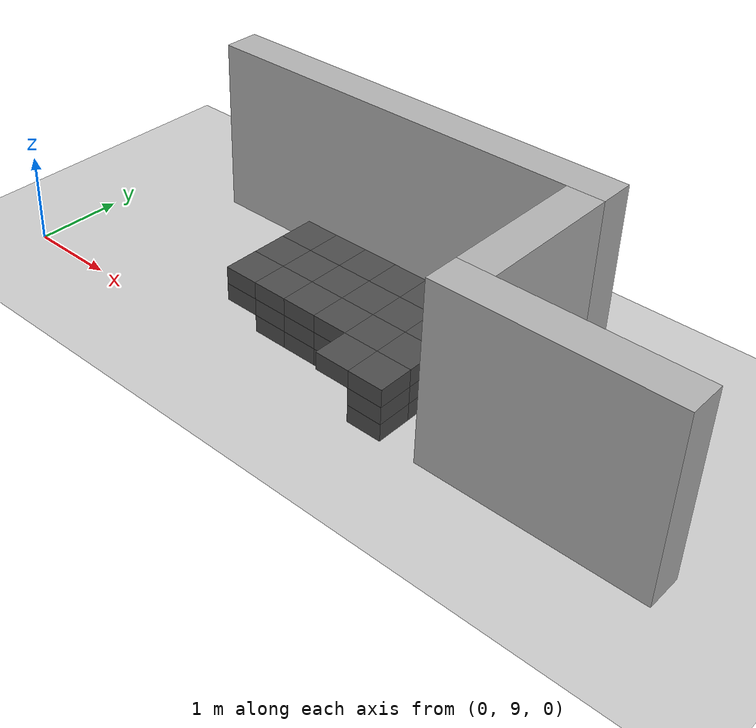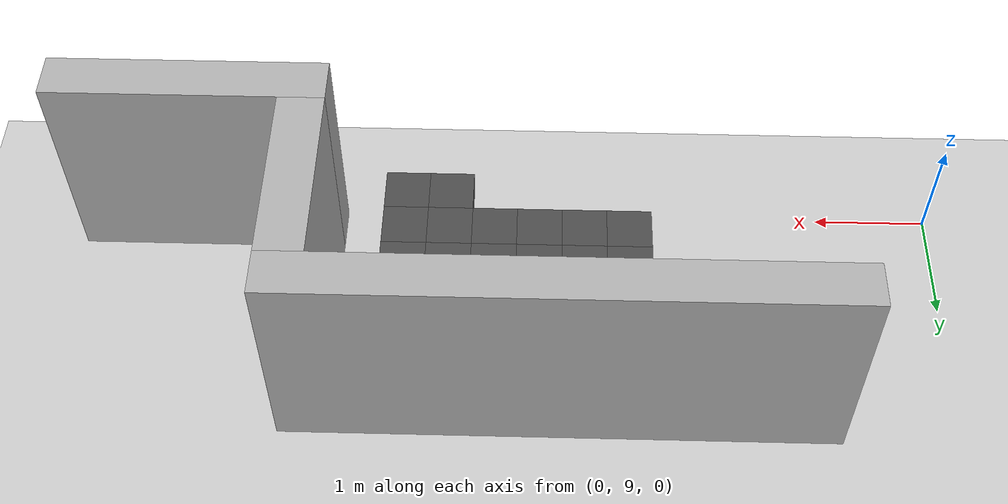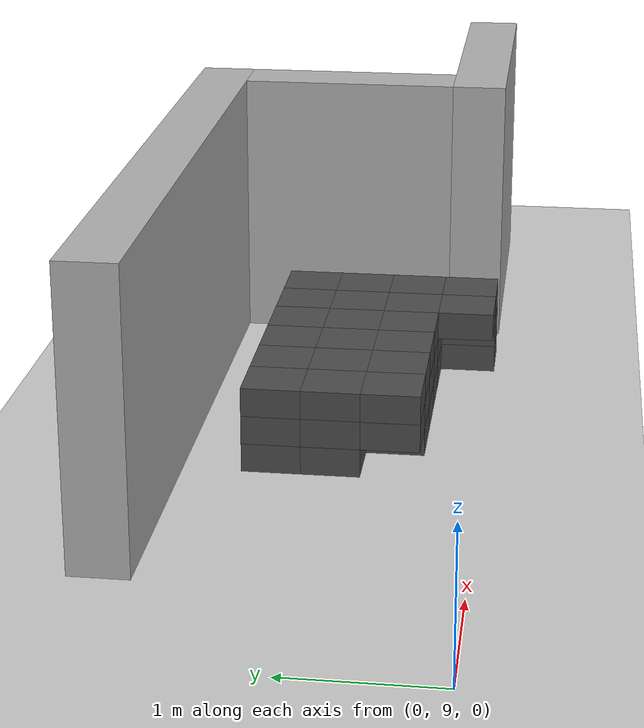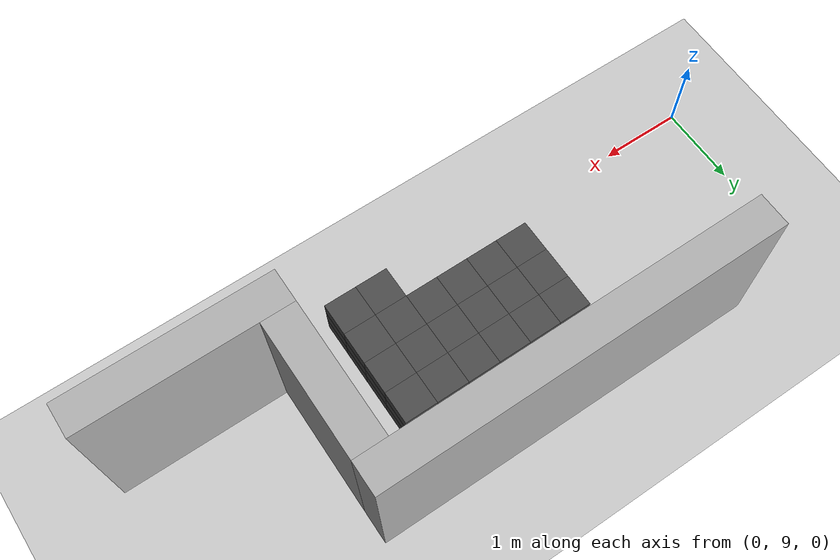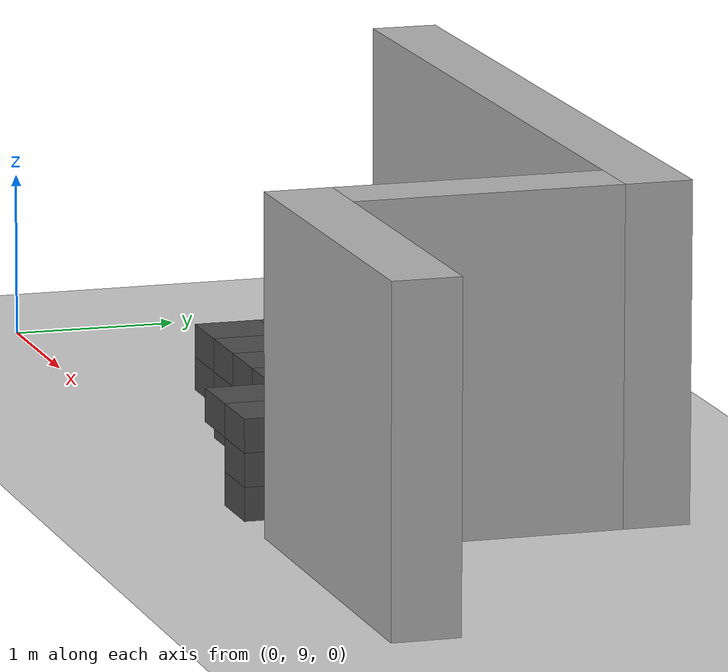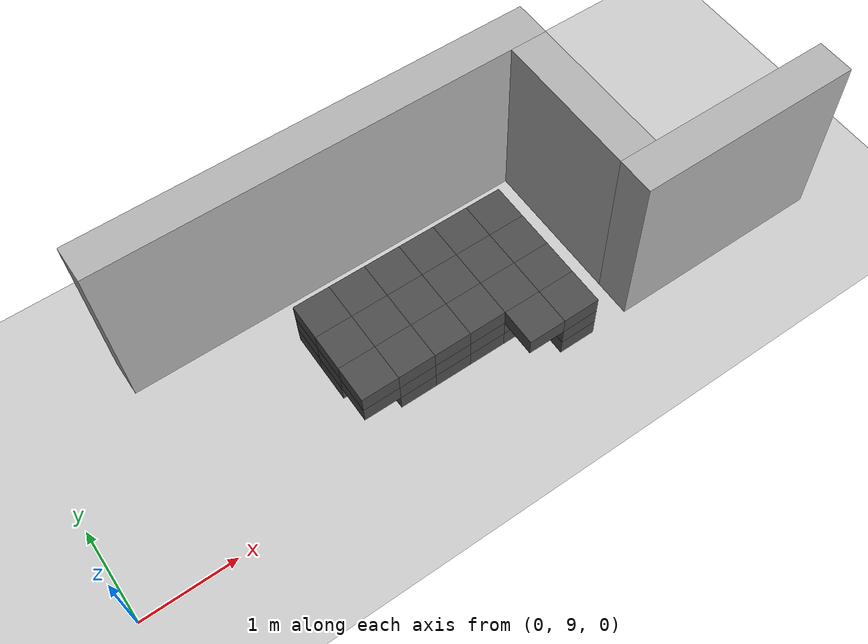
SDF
<sdf version="1.6">
 <world name="default">
  <include><uri>model://ground_plane</uri></include>
  <model name="wall_3">
   <pose frame="sim_world">5.6 10.2 1.0 0 0 0</pose>
   <static>True</static>
   <link name="wall_3_link">
    <inertial>
     <mass>100</mass>
     <inertia>
      <ixx>0.166667</ixx>
      <ixy>0</ixy>
      <ixz>0</ixz>
      <iyy>0.166667</iyy>
      <iyz>0</iyz>
      <izz>0.166667</izz>
     </inertia>
    </inertial>
    <collision name="wall_3_collision">
     <geometry><box><size>0.4 1.6 2.0</size></box></geometry>
     <max_contacts>100</max_contacts>
    </collision>
    <visual name="wall_3_visual">
     <geometry><box><size>0.4 1.6 2.0</size></box></geometry>
     <material><ambient>0.7 0.7 0.7 1</ambient><diffuse>0.7 0.7 0.7 1</diffuse></material>
    </visual>
   </link>
  </model>
  <model name="wall_24">
   <pose frame="sim_world">6.6 9.2 1.0 0 0 0</pose>
   <static>True</static>
   <link name="wall_24_link">
    <inertial>
     <mass>100</mass>
     <inertia>
      <ixx>0.166667</ixx>
      <ixy>0</ixy>
      <ixz>0</ixz>
      <iyy>0.166667</iyy>
      <iyz>0</iyz>
      <izz>0.166667</izz>
     </inertia>
    </inertial>
    <collision name="wall_24_collision">
     <geometry><box><size>2.4000000000000004 0.4 2.0</size></box></geometry>
     <max_contacts>100</max_contacts>
    </collision>
    <visual name="wall_24_visual">
     <geometry><box><size>2.4000000000000004 0.4 2.0</size></box></geometry>
     <material><ambient>0.7 0.7 0.7 1</ambient><diffuse>0.7 0.7 0.7 1</diffuse></material>
    </visual>
   </link>
  </model>
  <model name="wall_25">
   <pose frame="sim_world">3.4 11.2 1.0 0 0 0</pose>
   <static>True</static>
   <link name="wall_25_link">
    <inertial>
     <mass>100</mass>
     <inertia>
      <ixx>0.166667</ixx>
      <ixy>0</ixy>
      <ixz>0</ixz>
      <iyy>0.166667</iyy>
      <iyz>0</iyz>
      <izz>0.166667</izz>
     </inertia>
    </inertial>
    <collision name="wall_25_collision">
     <geometry><box><size>4.800000000000001 0.4 2.0</size></box></geometry>
     <max_contacts>100</max_contacts>
    </collision>
    <visual name="wall_25_visual">
     <geometry><box><size>4.800000000000001 0.4 2.0</size></box></geometry>
     <material><ambient>0.7 0.7 0.7 1</ambient><diffuse>0.7 0.7 0.7 1</diffuse></material>
    </visual>
   </link>
  </model>
  <model name="box_115">
   <pose frame="sim_world">2.8 9.6 0.3 0 -0 0</pose>
   <static>True</static>
   <link name="box_115_link">
    <inertial>
     <mass>100</mass>
     <inertia>
      <ixx>0.166667</ixx>
      <ixy>0</ixy>
      <ixz>0</ixz>
      <iyy>0.166667</iyy>
      <iyz>0</iyz>
      <izz>0.166667</izz>
     </inertia>
    </inertial>
    <collision name="box_115_collision">
     <geometry><box><size>0.4 0.4 0.2</size></box></geometry>
     <max_contacts>100</max_contacts>
    </collision>
    <visual name="box_115_visual">
     <geometry><box><size>0.4 0.4 0.2</size></box></geometry>
     <material><ambient>0.3 0.3 0.3 1</ambient><diffuse>0.3 0.3 0.3 1</diffuse></material>
    </visual>
   </link>
  </model>
  <model name="box_116">
   <pose frame="sim_world">2.8 9.6 0.5 0 -0 0</pose>
   <static>True</static>
   <link name="box_116_link">
    <inertial>
     <mass>100</mass>
     <inertia>
      <ixx>0.166667</ixx>
      <ixy>0</ixy>
      <ixz>0</ixz>
      <iyy>0.166667</iyy>
      <iyz>0</iyz>
      <izz>0.166667</izz>
     </inertia>
    </inertial>
    <collision name="box_116_collision">
     <geometry><box><size>0.4 0.4 0.2</size></box></geometry>
     <max_contacts>100</max_contacts>
    </collision>
    <visual name="box_116_visual">
     <geometry><box><size>0.4 0.4 0.2</size></box></geometry>
     <material><ambient>0.3 0.3 0.3 1</ambient><diffuse>0.3 0.3 0.3 1</diffuse></material>
    </visual>
   </link>
  </model>
  <model name="box_117">
   <pose frame="sim_world">2.8 10.0 0.1 0 -0 0</pose>
   <static>True</static>
   <link name="box_117_link">
    <inertial>
     <mass>100</mass>
     <inertia>
      <ixx>0.166667</ixx>
      <ixy>0</ixy>
      <ixz>0</ixz>
      <iyy>0.166667</iyy>
      <iyz>0</iyz>
      <izz>0.166667</izz>
     </inertia>
    </inertial>
    <collision name="box_117_collision">
     <geometry><box><size>0.4 0.4 0.2</size></box></geometry>
     <max_contacts>100</max_contacts>
    </collision>
    <visual name="box_117_visual">
     <geometry><box><size>0.4 0.4 0.2</size></box></geometry>
     <material><ambient>0.3 0.3 0.3 1</ambient><diffuse>0.3 0.3 0.3 1</diffuse></material>
    </visual>
   </link>
  </model>
  <model name="box_118">
   <pose frame="sim_world">2.8 10.0 0.3 0 -0 0</pose>
   <static>True</static>
   <link name="box_118_link">
    <inertial>
     <mass>100</mass>
     <inertia>
      <ixx>0.166667</ixx>
      <ixy>0</ixy>
      <ixz>0</ixz>
      <iyy>0.166667</iyy>
      <iyz>0</iyz>
      <izz>0.166667</izz>
     </inertia>
    </inertial>
    <collision name="box_118_collision">
     <geometry><box><size>0.4 0.4 0.2</size></box></geometry>
     <max_contacts>100</max_contacts>
    </collision>
    <visual name="box_118_visual">
     <geometry><box><size>0.4 0.4 0.2</size></box></geometry>
     <material><ambient>0.3 0.3 0.3 1</ambient><diffuse>0.3 0.3 0.3 1</diffuse></material>
    </visual>
   </link>
  </model>
  <model name="box_119">
   <pose frame="sim_world">2.8 10.0 0.5 0 -0 0</pose>
   <static>True</static>
   <link name="box_119_link">
    <inertial>
     <mass>100</mass>
     <inertia>
      <ixx>0.166667</ixx>
      <ixy>0</ixy>
      <ixz>0</ixz>
      <iyy>0.166667</iyy>
      <iyz>0</iyz>
      <izz>0.166667</izz>
     </inertia>
    </inertial>
    <collision name="box_119_collision">
     <geometry><box><size>0.4 0.4 0.2</size></box></geometry>
     <max_contacts>100</max_contacts>
    </collision>
    <visual name="box_119_visual">
     <geometry><box><size>0.4 0.4 0.2</size></box></geometry>
     <material><ambient>0.3 0.3 0.3 1</ambient><diffuse>0.3 0.3 0.3 1</diffuse></material>
    </visual>
   </link>
  </model>
  <model name="box_120">
   <pose frame="sim_world">2.8 10.4 0.1 0 -0 0</pose>
   <static>True</static>
   <link name="box_120_link">
    <inertial>
     <mass>100</mass>
     <inertia>
      <ixx>0.166667</ixx>
      <ixy>0</ixy>
      <ixz>0</ixz>
      <iyy>0.166667</iyy>
      <iyz>0</iyz>
      <izz>0.166667</izz>
     </inertia>
    </inertial>
    <collision name="box_120_collision">
     <geometry><box><size>0.4 0.4 0.2</size></box></geometry>
     <max_contacts>100</max_contacts>
    </collision>
    <visual name="box_120_visual">
     <geometry><box><size>0.4 0.4 0.2</size></box></geometry>
     <material><ambient>0.3 0.3 0.3 1</ambient><diffuse>0.3 0.3 0.3 1</diffuse></material>
    </visual>
   </link>
  </model>
  <model name="box_121">
   <pose frame="sim_world">2.8 10.4 0.3 0 -0 0</pose>
   <static>True</static>
   <link name="box_121_link">
    <inertial>
     <mass>100</mass>
     <inertia>
      <ixx>0.166667</ixx>
      <ixy>0</ixy>
      <ixz>0</ixz>
      <iyy>0.166667</iyy>
      <iyz>0</iyz>
      <izz>0.166667</izz>
     </inertia>
    </inertial>
    <collision name="box_121_collision">
     <geometry><box><size>0.4 0.4 0.2</size></box></geometry>
     <max_contacts>100</max_contacts>
    </collision>
    <visual name="box_121_visual">
     <geometry><box><size>0.4 0.4 0.2</size></box></geometry>
     <material><ambient>0.3 0.3 0.3 1</ambient><diffuse>0.3 0.3 0.3 1</diffuse></material>
    </visual>
   </link>
  </model>
  <model name="box_122">
   <pose frame="sim_world">2.8 10.4 0.5 0 -0 0</pose>
   <static>True</static>
   <link name="box_122_link">
    <inertial>
     <mass>100</mass>
     <inertia>
      <ixx>0.166667</ixx>
      <ixy>0</ixy>
      <ixz>0</ixz>
      <iyy>0.166667</iyy>
      <iyz>0</iyz>
      <izz>0.166667</izz>
     </inertia>
    </inertial>
    <collision name="box_122_collision">
     <geometry><box><size>0.4 0.4 0.2</size></box></geometry>
     <max_contacts>100</max_contacts>
    </collision>
    <visual name="box_122_visual">
     <geometry><box><size>0.4 0.4 0.2</size></box></geometry>
     <material><ambient>0.3 0.3 0.3 1</ambient><diffuse>0.3 0.3 0.3 1</diffuse></material>
    </visual>
   </link>
  </model>
  <model name="box_129">
   <pose frame="sim_world">3.2 9.6 0.1 0 -0 0</pose>
   <static>True</static>
   <link name="box_129_link">
    <inertial>
     <mass>100</mass>
     <inertia>
      <ixx>0.166667</ixx>
      <ixy>0</ixy>
      <ixz>0</ixz>
      <iyy>0.166667</iyy>
      <iyz>0</iyz>
      <izz>0.166667</izz>
     </inertia>
    </inertial>
    <collision name="box_129_collision">
     <geometry><box><size>0.4 0.4 0.2</size></box></geometry>
     <max_contacts>100</max_contacts>
    </collision>
    <visual name="box_129_visual">
     <geometry><box><size>0.4 0.4 0.2</size></box></geometry>
     <material><ambient>0.3 0.3 0.3 1</ambient><diffuse>0.3 0.3 0.3 1</diffuse></material>
    </visual>
   </link>
  </model>
  <model name="box_130">
   <pose frame="sim_world">3.2 9.6 0.3 0 -0 0</pose>
   <static>True</static>
   <link name="box_130_link">
    <inertial>
     <mass>100</mass>
     <inertia>
      <ixx>0.166667</ixx>
      <ixy>0</ixy>
      <ixz>0</ixz>
      <iyy>0.166667</iyy>
      <iyz>0</iyz>
      <izz>0.166667</izz>
     </inertia>
    </inertial>
    <collision name="box_130_collision">
     <geometry><box><size>0.4 0.4 0.2</size></box></geometry>
     <max_contacts>100</max_contacts>
    </collision>
    <visual name="box_130_visual">
     <geometry><box><size>0.4 0.4 0.2</size></box></geometry>
     <material><ambient>0.3 0.3 0.3 1</ambient><diffuse>0.3 0.3 0.3 1</diffuse></material>
    </visual>
   </link>
  </model>
  <model name="box_131">
   <pose frame="sim_world">3.2 9.6 0.5 0 -0 0</pose>
   <static>True</static>
   <link name="box_131_link">
    <inertial>
     <mass>100</mass>
     <inertia>
      <ixx>0.166667</ixx>
      <ixy>0</ixy>
      <ixz>0</ixz>
      <iyy>0.166667</iyy>
      <iyz>0</iyz>
      <izz>0.166667</izz>
     </inertia>
    </inertial>
    <collision name="box_131_collision">
     <geometry><box><size>0.4 0.4 0.2</size></box></geometry>
     <max_contacts>100</max_contacts>
    </collision>
    <visual name="box_131_visual">
     <geometry><box><size>0.4 0.4 0.2</size></box></geometry>
     <material><ambient>0.3 0.3 0.3 1</ambient><diffuse>0.3 0.3 0.3 1</diffuse></material>
    </visual>
   </link>
  </model>
  <model name="box_132">
   <pose frame="sim_world">3.2 10.0 0.1 0 -0 0</pose>
   <static>True</static>
   <link name="box_132_link">
    <inertial>
     <mass>100</mass>
     <inertia>
      <ixx>0.166667</ixx>
      <ixy>0</ixy>
      <ixz>0</ixz>
      <iyy>0.166667</iyy>
      <iyz>0</iyz>
      <izz>0.166667</izz>
     </inertia>
    </inertial>
    <collision name="box_132_collision">
     <geometry><box><size>0.4 0.4 0.2</size></box></geometry>
     <max_contacts>100</max_contacts>
    </collision>
    <visual name="box_132_visual">
     <geometry><box><size>0.4 0.4 0.2</size></box></geometry>
     <material><ambient>0.3 0.3 0.3 1</ambient><diffuse>0.3 0.3 0.3 1</diffuse></material>
    </visual>
   </link>
  </model>
  <model name="box_133">
   <pose frame="sim_world">3.2 10.0 0.3 0 -0 0</pose>
   <static>True</static>
   <link name="box_133_link">
    <inertial>
     <mass>100</mass>
     <inertia>
      <ixx>0.166667</ixx>
      <ixy>0</ixy>
      <ixz>0</ixz>
      <iyy>0.166667</iyy>
      <iyz>0</iyz>
      <izz>0.166667</izz>
     </inertia>
    </inertial>
    <collision name="box_133_collision">
     <geometry><box><size>0.4 0.4 0.2</size></box></geometry>
     <max_contacts>100</max_contacts>
    </collision>
    <visual name="box_133_visual">
     <geometry><box><size>0.4 0.4 0.2</size></box></geometry>
     <material><ambient>0.3 0.3 0.3 1</ambient><diffuse>0.3 0.3 0.3 1</diffuse></material>
    </visual>
   </link>
  </model>
  <model name="box_134">
   <pose frame="sim_world">3.2 10.0 0.5 0 -0 0</pose>
   <static>True</static>
   <link name="box_134_link">
    <inertial>
     <mass>100</mass>
     <inertia>
      <ixx>0.166667</ixx>
      <ixy>0</ixy>
      <ixz>0</ixz>
      <iyy>0.166667</iyy>
      <iyz>0</iyz>
      <izz>0.166667</izz>
     </inertia>
    </inertial>
    <collision name="box_134_collision">
     <geometry><box><size>0.4 0.4 0.2</size></box></geometry>
     <max_contacts>100</max_contacts>
    </collision>
    <visual name="box_134_visual">
     <geometry><box><size>0.4 0.4 0.2</size></box></geometry>
     <material><ambient>0.3 0.3 0.3 1</ambient><diffuse>0.3 0.3 0.3 1</diffuse></material>
    </visual>
   </link>
  </model>
  <model name="box_135">
   <pose frame="sim_world">3.2 10.4 0.1 0 -0 0</pose>
   <static>True</static>
   <link name="box_135_link">
    <inertial>
     <mass>100</mass>
     <inertia>
      <ixx>0.166667</ixx>
      <ixy>0</ixy>
      <ixz>0</ixz>
      <iyy>0.166667</iyy>
      <iyz>0</iyz>
      <izz>0.166667</izz>
     </inertia>
    </inertial>
    <collision name="box_135_collision">
     <geometry><box><size>0.4 0.4 0.2</size></box></geometry>
     <max_contacts>100</max_contacts>
    </collision>
    <visual name="box_135_visual">
     <geometry><box><size>0.4 0.4 0.2</size></box></geometry>
     <material><ambient>0.3 0.3 0.3 1</ambient><diffuse>0.3 0.3 0.3 1</diffuse></material>
    </visual>
   </link>
  </model>
  <model name="box_136">
   <pose frame="sim_world">3.2 10.4 0.3 0 -0 0</pose>
   <static>True</static>
   <link name="box_136_link">
    <inertial>
     <mass>100</mass>
     <inertia>
      <ixx>0.166667</ixx>
      <ixy>0</ixy>
      <ixz>0</ixz>
      <iyy>0.166667</iyy>
      <iyz>0</iyz>
      <izz>0.166667</izz>
     </inertia>
    </inertial>
    <collision name="box_136_collision">
     <geometry><box><size>0.4 0.4 0.2</size></box></geometry>
     <max_contacts>100</max_contacts>
    </collision>
    <visual name="box_136_visual">
     <geometry><box><size>0.4 0.4 0.2</size></box></geometry>
     <material><ambient>0.3 0.3 0.3 1</ambient><diffuse>0.3 0.3 0.3 1</diffuse></material>
    </visual>
   </link>
  </model>
  <model name="box_137">
   <pose frame="sim_world">3.2 10.4 0.5 0 -0 0</pose>
   <static>True</static>
   <link name="box_137_link">
    <inertial>
     <mass>100</mass>
     <inertia>
      <ixx>0.166667</ixx>
      <ixy>0</ixy>
      <ixz>0</ixz>
      <iyy>0.166667</iyy>
      <iyz>0</iyz>
      <izz>0.166667</izz>
     </inertia>
    </inertial>
    <collision name="box_137_collision">
     <geometry><box><size>0.4 0.4 0.2</size></box></geometry>
     <max_contacts>100</max_contacts>
    </collision>
    <visual name="box_137_visual">
     <geometry><box><size>0.4 0.4 0.2</size></box></geometry>
     <material><ambient>0.3 0.3 0.3 1</ambient><diffuse>0.3 0.3 0.3 1</diffuse></material>
    </visual>
   </link>
  </model>
  <model name="box_141">
   <pose frame="sim_world">3.6 9.6 0.1 0 -0 0</pose>
   <static>True</static>
   <link name="box_141_link">
    <inertial>
     <mass>100</mass>
     <inertia>
      <ixx>0.166667</ixx>
      <ixy>0</ixy>
      <ixz>0</ixz>
      <iyy>0.166667</iyy>
      <iyz>0</iyz>
      <izz>0.166667</izz>
     </inertia>
    </inertial>
    <collision name="box_141_collision">
     <geometry><box><size>0.4 0.4 0.2</size></box></geometry>
     <max_contacts>100</max_contacts>
    </collision>
    <visual name="box_141_visual">
     <geometry><box><size>0.4 0.4 0.2</size></box></geometry>
     <material><ambient>0.3 0.3 0.3 1</ambient><diffuse>0.3 0.3 0.3 1</diffuse></material>
    </visual>
   </link>
  </model>
  <model name="box_142">
   <pose frame="sim_world">3.6 9.6 0.3 0 -0 0</pose>
   <static>True</static>
   <link name="box_142_link">
    <inertial>
     <mass>100</mass>
     <inertia>
      <ixx>0.166667</ixx>
      <ixy>0</ixy>
      <ixz>0</ixz>
      <iyy>0.166667</iyy>
      <iyz>0</iyz>
      <izz>0.166667</izz>
     </inertia>
    </inertial>
    <collision name="box_142_collision">
     <geometry><box><size>0.4 0.4 0.2</size></box></geometry>
     <max_contacts>100</max_contacts>
    </collision>
    <visual name="box_142_visual">
     <geometry><box><size>0.4 0.4 0.2</size></box></geometry>
     <material><ambient>0.3 0.3 0.3 1</ambient><diffuse>0.3 0.3 0.3 1</diffuse></material>
    </visual>
   </link>
  </model>
  <model name="box_143">
   <pose frame="sim_world">3.6 9.6 0.5 0 -0 0</pose>
   <static>True</static>
   <link name="box_143_link">
    <inertial>
     <mass>100</mass>
     <inertia>
      <ixx>0.166667</ixx>
      <ixy>0</ixy>
      <ixz>0</ixz>
      <iyy>0.166667</iyy>
      <iyz>0</iyz>
      <izz>0.166667</izz>
     </inertia>
    </inertial>
    <collision name="box_143_collision">
     <geometry><box><size>0.4 0.4 0.2</size></box></geometry>
     <max_contacts>100</max_contacts>
    </collision>
    <visual name="box_143_visual">
     <geometry><box><size>0.4 0.4 0.2</size></box></geometry>
     <material><ambient>0.3 0.3 0.3 1</ambient><diffuse>0.3 0.3 0.3 1</diffuse></material>
    </visual>
   </link>
  </model>
  <model name="box_144">
   <pose frame="sim_world">3.6 10.0 0.1 0 -0 0</pose>
   <static>True</static>
   <link name="box_144_link">
    <inertial>
     <mass>100</mass>
     <inertia>
      <ixx>0.166667</ixx>
      <ixy>0</ixy>
      <ixz>0</ixz>
      <iyy>0.166667</iyy>
      <iyz>0</iyz>
      <izz>0.166667</izz>
     </inertia>
    </inertial>
    <collision name="box_144_collision">
     <geometry><box><size>0.4 0.4 0.2</size></box></geometry>
     <max_contacts>100</max_contacts>
    </collision>
    <visual name="box_144_visual">
     <geometry><box><size>0.4 0.4 0.2</size></box></geometry>
     <material><ambient>0.3 0.3 0.3 1</ambient><diffuse>0.3 0.3 0.3 1</diffuse></material>
    </visual>
   </link>
  </model>
  <model name="box_145">
   <pose frame="sim_world">3.6 10.0 0.3 0 -0 0</pose>
   <static>True</static>
   <link name="box_145_link">
    <inertial>
     <mass>100</mass>
     <inertia>
      <ixx>0.166667</ixx>
      <ixy>0</ixy>
      <ixz>0</ixz>
      <iyy>0.166667</iyy>
      <iyz>0</iyz>
      <izz>0.166667</izz>
     </inertia>
    </inertial>
    <collision name="box_145_collision">
     <geometry><box><size>0.4 0.4 0.2</size></box></geometry>
     <max_contacts>100</max_contacts>
    </collision>
    <visual name="box_145_visual">
     <geometry><box><size>0.4 0.4 0.2</size></box></geometry>
     <material><ambient>0.3 0.3 0.3 1</ambient><diffuse>0.3 0.3 0.3 1</diffuse></material>
    </visual>
   </link>
  </model>
  <model name="box_146">
   <pose frame="sim_world">3.6 10.0 0.5 0 -0 0</pose>
   <static>True</static>
   <link name="box_146_link">
    <inertial>
     <mass>100</mass>
     <inertia>
      <ixx>0.166667</ixx>
      <ixy>0</ixy>
      <ixz>0</ixz>
      <iyy>0.166667</iyy>
      <iyz>0</iyz>
      <izz>0.166667</izz>
     </inertia>
    </inertial>
    <collision name="box_146_collision">
     <geometry><box><size>0.4 0.4 0.2</size></box></geometry>
     <max_contacts>100</max_contacts>
    </collision>
    <visual name="box_146_visual">
     <geometry><box><size>0.4 0.4 0.2</size></box></geometry>
     <material><ambient>0.3 0.3 0.3 1</ambient><diffuse>0.3 0.3 0.3 1</diffuse></material>
    </visual>
   </link>
  </model>
  <model name="box_147">
   <pose frame="sim_world">3.6 10.4 0.1 0 -0 0</pose>
   <static>True</static>
   <link name="box_147_link">
    <inertial>
     <mass>100</mass>
     <inertia>
      <ixx>0.166667</ixx>
      <ixy>0</ixy>
      <ixz>0</ixz>
      <iyy>0.166667</iyy>
      <iyz>0</iyz>
      <izz>0.166667</izz>
     </inertia>
    </inertial>
    <collision name="box_147_collision">
     <geometry><box><size>0.4 0.4 0.2</size></box></geometry>
     <max_contacts>100</max_contacts>
    </collision>
    <visual name="box_147_visual">
     <geometry><box><size>0.4 0.4 0.2</size></box></geometry>
     <material><ambient>0.3 0.3 0.3 1</ambient><diffuse>0.3 0.3 0.3 1</diffuse></material>
    </visual>
   </link>
  </model>
  <model name="box_148">
   <pose frame="sim_world">3.6 10.4 0.3 0 -0 0</pose>
   <static>True</static>
   <link name="box_148_link">
    <inertial>
     <mass>100</mass>
     <inertia>
      <ixx>0.166667</ixx>
      <ixy>0</ixy>
      <ixz>0</ixz>
      <iyy>0.166667</iyy>
      <iyz>0</iyz>
      <izz>0.166667</izz>
     </inertia>
    </inertial>
    <collision name="box_148_collision">
     <geometry><box><size>0.4 0.4 0.2</size></box></geometry>
     <max_contacts>100</max_contacts>
    </collision>
    <visual name="box_148_visual">
     <geometry><box><size>0.4 0.4 0.2</size></box></geometry>
     <material><ambient>0.3 0.3 0.3 1</ambient><diffuse>0.3 0.3 0.3 1</diffuse></material>
    </visual>
   </link>
  </model>
  <model name="box_149">
   <pose frame="sim_world">3.6 10.4 0.5 0 -0 0</pose>
   <static>True</static>
   <link name="box_149_link">
    <inertial>
     <mass>100</mass>
     <inertia>
      <ixx>0.166667</ixx>
      <ixy>0</ixy>
      <ixz>0</ixz>
      <iyy>0.166667</iyy>
      <iyz>0</iyz>
      <izz>0.166667</izz>
     </inertia>
    </inertial>
    <collision name="box_149_collision">
     <geometry><box><size>0.4 0.4 0.2</size></box></geometry>
     <max_contacts>100</max_contacts>
    </collision>
    <visual name="box_149_visual">
     <geometry><box><size>0.4 0.4 0.2</size></box></geometry>
     <material><ambient>0.3 0.3 0.3 1</ambient><diffuse>0.3 0.3 0.3 1</diffuse></material>
    </visual>
   </link>
  </model>
  <model name="box_153">
   <pose frame="sim_world">4.0 9.6 0.1 0 -0 0</pose>
   <static>True</static>
   <link name="box_153_link">
    <inertial>
     <mass>100</mass>
     <inertia>
      <ixx>0.166667</ixx>
      <ixy>0</ixy>
      <ixz>0</ixz>
      <iyy>0.166667</iyy>
      <iyz>0</iyz>
      <izz>0.166667</izz>
     </inertia>
    </inertial>
    <collision name="box_153_collision">
     <geometry><box><size>0.4 0.4 0.2</size></box></geometry>
     <max_contacts>100</max_contacts>
    </collision>
    <visual name="box_153_visual">
     <geometry><box><size>0.4 0.4 0.2</size></box></geometry>
     <material><ambient>0.3 0.3 0.3 1</ambient><diffuse>0.3 0.3 0.3 1</diffuse></material>
    </visual>
   </link>
  </model>
  <model name="box_154">
   <pose frame="sim_world">4.0 9.6 0.3 0 -0 0</pose>
   <static>True</static>
   <link name="box_154_link">
    <inertial>
     <mass>100</mass>
     <inertia>
      <ixx>0.166667</ixx>
      <ixy>0</ixy>
      <ixz>0</ixz>
      <iyy>0.166667</iyy>
      <iyz>0</iyz>
      <izz>0.166667</izz>
     </inertia>
    </inertial>
    <collision name="box_154_collision">
     <geometry><box><size>0.4 0.4 0.2</size></box></geometry>
     <max_contacts>100</max_contacts>
    </collision>
    <visual name="box_154_visual">
     <geometry><box><size>0.4 0.4 0.2</size></box></geometry>
     <material><ambient>0.3 0.3 0.3 1</ambient><diffuse>0.3 0.3 0.3 1</diffuse></material>
    </visual>
   </link>
  </model>
  <model name="box_155">
   <pose frame="sim_world">4.0 9.6 0.5 0 -0 0</pose>
   <static>True</static>
   <link name="box_155_link">
    <inertial>
     <mass>100</mass>
     <inertia>
      <ixx>0.166667</ixx>
      <ixy>0</ixy>
      <ixz>0</ixz>
      <iyy>0.166667</iyy>
      <iyz>0</iyz>
      <izz>0.166667</izz>
     </inertia>
    </inertial>
    <collision name="box_155_collision">
     <geometry><box><size>0.4 0.4 0.2</size></box></geometry>
     <max_contacts>100</max_contacts>
    </collision>
    <visual name="box_155_visual">
     <geometry><box><size>0.4 0.4 0.2</size></box></geometry>
     <material><ambient>0.3 0.3 0.3 1</ambient><diffuse>0.3 0.3 0.3 1</diffuse></material>
    </visual>
   </link>
  </model>
  <model name="box_156">
   <pose frame="sim_world">4.0 10.0 0.1 0 -0 0</pose>
   <static>True</static>
   <link name="box_156_link">
    <inertial>
     <mass>100</mass>
     <inertia>
      <ixx>0.166667</ixx>
      <ixy>0</ixy>
      <ixz>0</ixz>
      <iyy>0.166667</iyy>
      <iyz>0</iyz>
      <izz>0.166667</izz>
     </inertia>
    </inertial>
    <collision name="box_156_collision">
     <geometry><box><size>0.4 0.4 0.2</size></box></geometry>
     <max_contacts>100</max_contacts>
    </collision>
    <visual name="box_156_visual">
     <geometry><box><size>0.4 0.4 0.2</size></box></geometry>
     <material><ambient>0.3 0.3 0.3 1</ambient><diffuse>0.3 0.3 0.3 1</diffuse></material>
    </visual>
   </link>
  </model>
  <model name="box_157">
   <pose frame="sim_world">4.0 10.0 0.3 0 -0 0</pose>
   <static>True</static>
   <link name="box_157_link">
    <inertial>
     <mass>100</mass>
     <inertia>
      <ixx>0.166667</ixx>
      <ixy>0</ixy>
      <ixz>0</ixz>
      <iyy>0.166667</iyy>
      <iyz>0</iyz>
      <izz>0.166667</izz>
     </inertia>
    </inertial>
    <collision name="box_157_collision">
     <geometry><box><size>0.4 0.4 0.2</size></box></geometry>
     <max_contacts>100</max_contacts>
    </collision>
    <visual name="box_157_visual">
     <geometry><box><size>0.4 0.4 0.2</size></box></geometry>
     <material><ambient>0.3 0.3 0.3 1</ambient><diffuse>0.3 0.3 0.3 1</diffuse></material>
    </visual>
   </link>
  </model>
  <model name="box_158">
   <pose frame="sim_world">4.0 10.0 0.5 0 -0 0</pose>
   <static>True</static>
   <link name="box_158_link">
    <inertial>
     <mass>100</mass>
     <inertia>
      <ixx>0.166667</ixx>
      <ixy>0</ixy>
      <ixz>0</ixz>
      <iyy>0.166667</iyy>
      <iyz>0</iyz>
      <izz>0.166667</izz>
     </inertia>
    </inertial>
    <collision name="box_158_collision">
     <geometry><box><size>0.4 0.4 0.2</size></box></geometry>
     <max_contacts>100</max_contacts>
    </collision>
    <visual name="box_158_visual">
     <geometry><box><size>0.4 0.4 0.2</size></box></geometry>
     <material><ambient>0.3 0.3 0.3 1</ambient><diffuse>0.3 0.3 0.3 1</diffuse></material>
    </visual>
   </link>
  </model>
  <model name="box_159">
   <pose frame="sim_world">4.0 10.4 0.1 0 -0 0</pose>
   <static>True</static>
   <link name="box_159_link">
    <inertial>
     <mass>100</mass>
     <inertia>
      <ixx>0.166667</ixx>
      <ixy>0</ixy>
      <ixz>0</ixz>
      <iyy>0.166667</iyy>
      <iyz>0</iyz>
      <izz>0.166667</izz>
     </inertia>
    </inertial>
    <collision name="box_159_collision">
     <geometry><box><size>0.4 0.4 0.2</size></box></geometry>
     <max_contacts>100</max_contacts>
    </collision>
    <visual name="box_159_visual">
     <geometry><box><size>0.4 0.4 0.2</size></box></geometry>
     <material><ambient>0.3 0.3 0.3 1</ambient><diffuse>0.3 0.3 0.3 1</diffuse></material>
    </visual>
   </link>
  </model>
  <model name="box_160">
   <pose frame="sim_world">4.0 10.4 0.3 0 -0 0</pose>
   <static>True</static>
   <link name="box_160_link">
    <inertial>
     <mass>100</mass>
     <inertia>
      <ixx>0.166667</ixx>
      <ixy>0</ixy>
      <ixz>0</ixz>
      <iyy>0.166667</iyy>
      <iyz>0</iyz>
      <izz>0.166667</izz>
     </inertia>
    </inertial>
    <collision name="box_160_collision">
     <geometry><box><size>0.4 0.4 0.2</size></box></geometry>
     <max_contacts>100</max_contacts>
    </collision>
    <visual name="box_160_visual">
     <geometry><box><size>0.4 0.4 0.2</size></box></geometry>
     <material><ambient>0.3 0.3 0.3 1</ambient><diffuse>0.3 0.3 0.3 1</diffuse></material>
    </visual>
   </link>
  </model>
  <model name="box_161">
   <pose frame="sim_world">4.0 10.4 0.5 0 -0 0</pose>
   <static>True</static>
   <link name="box_161_link">
    <inertial>
     <mass>100</mass>
     <inertia>
      <ixx>0.166667</ixx>
      <ixy>0</ixy>
      <ixz>0</ixz>
      <iyy>0.166667</iyy>
      <iyz>0</iyz>
      <izz>0.166667</izz>
     </inertia>
    </inertial>
    <collision name="box_161_collision">
     <geometry><box><size>0.4 0.4 0.2</size></box></geometry>
     <max_contacts>100</max_contacts>
    </collision>
    <visual name="box_161_visual">
     <geometry><box><size>0.4 0.4 0.2</size></box></geometry>
     <material><ambient>0.3 0.3 0.3 1</ambient><diffuse>0.3 0.3 0.3 1</diffuse></material>
    </visual>
   </link>
  </model>
  <model name="box_164">
   <pose frame="sim_world">4.4 9.2 0.5 0 -0 0</pose>
   <static>True</static>
   <link name="box_164_link">
    <inertial>
     <mass>100</mass>
     <inertia>
      <ixx>0.166667</ixx>
      <ixy>0</ixy>
      <ixz>0</ixz>
      <iyy>0.166667</iyy>
      <iyz>0</iyz>
      <izz>0.166667</izz>
     </inertia>
    </inertial>
    <collision name="box_164_collision">
     <geometry><box><size>0.4 0.4 0.2</size></box></geometry>
     <max_contacts>100</max_contacts>
    </collision>
    <visual name="box_164_visual">
     <geometry><box><size>0.4 0.4 0.2</size></box></geometry>
     <material><ambient>0.3 0.3 0.3 1</ambient><diffuse>0.3 0.3 0.3 1</diffuse></material>
    </visual>
   </link>
  </model>
  <model name="box_165">
   <pose frame="sim_world">4.4 9.6 0.1 0 -0 0</pose>
   <static>True</static>
   <link name="box_165_link">
    <inertial>
     <mass>100</mass>
     <inertia>
      <ixx>0.166667</ixx>
      <ixy>0</ixy>
      <ixz>0</ixz>
      <iyy>0.166667</iyy>
      <iyz>0</iyz>
      <izz>0.166667</izz>
     </inertia>
    </inertial>
    <collision name="box_165_collision">
     <geometry><box><size>0.4 0.4 0.2</size></box></geometry>
     <max_contacts>100</max_contacts>
    </collision>
    <visual name="box_165_visual">
     <geometry><box><size>0.4 0.4 0.2</size></box></geometry>
     <material><ambient>0.3 0.3 0.3 1</ambient><diffuse>0.3 0.3 0.3 1</diffuse></material>
    </visual>
   </link>
  </model>
  <model name="box_166">
   <pose frame="sim_world">4.4 9.6 0.3 0 -0 0</pose>
   <static>True</static>
   <link name="box_166_link">
    <inertial>
     <mass>100</mass>
     <inertia>
      <ixx>0.166667</ixx>
      <ixy>0</ixy>
      <ixz>0</ixz>
      <iyy>0.166667</iyy>
      <iyz>0</iyz>
      <izz>0.166667</izz>
     </inertia>
    </inertial>
    <collision name="box_166_collision">
     <geometry><box><size>0.4 0.4 0.2</size></box></geometry>
     <max_contacts>100</max_contacts>
    </collision>
    <visual name="box_166_visual">
     <geometry><box><size>0.4 0.4 0.2</size></box></geometry>
     <material><ambient>0.3 0.3 0.3 1</ambient><diffuse>0.3 0.3 0.3 1</diffuse></material>
    </visual>
   </link>
  </model>
  <model name="box_167">
   <pose frame="sim_world">4.4 9.6 0.5 0 -0 0</pose>
   <static>True</static>
   <link name="box_167_link">
    <inertial>
     <mass>100</mass>
     <inertia>
      <ixx>0.166667</ixx>
      <ixy>0</ixy>
      <ixz>0</ixz>
      <iyy>0.166667</iyy>
      <iyz>0</iyz>
      <izz>0.166667</izz>
     </inertia>
    </inertial>
    <collision name="box_167_collision">
     <geometry><box><size>0.4 0.4 0.2</size></box></geometry>
     <max_contacts>100</max_contacts>
    </collision>
    <visual name="box_167_visual">
     <geometry><box><size>0.4 0.4 0.2</size></box></geometry>
     <material><ambient>0.3 0.3 0.3 1</ambient><diffuse>0.3 0.3 0.3 1</diffuse></material>
    </visual>
   </link>
  </model>
  <model name="box_168">
   <pose frame="sim_world">4.4 10.0 0.1 0 -0 0</pose>
   <static>True</static>
   <link name="box_168_link">
    <inertial>
     <mass>100</mass>
     <inertia>
      <ixx>0.166667</ixx>
      <ixy>0</ixy>
      <ixz>0</ixz>
      <iyy>0.166667</iyy>
      <iyz>0</iyz>
      <izz>0.166667</izz>
     </inertia>
    </inertial>
    <collision name="box_168_collision">
     <geometry><box><size>0.4 0.4 0.2</size></box></geometry>
     <max_contacts>100</max_contacts>
    </collision>
    <visual name="box_168_visual">
     <geometry><box><size>0.4 0.4 0.2</size></box></geometry>
     <material><ambient>0.3 0.3 0.3 1</ambient><diffuse>0.3 0.3 0.3 1</diffuse></material>
    </visual>
   </link>
  </model>
  <model name="box_169">
   <pose frame="sim_world">4.4 10.0 0.3 0 -0 0</pose>
   <static>True</static>
   <link name="box_169_link">
    <inertial>
     <mass>100</mass>
     <inertia>
      <ixx>0.166667</ixx>
      <ixy>0</ixy>
      <ixz>0</ixz>
      <iyy>0.166667</iyy>
      <iyz>0</iyz>
      <izz>0.166667</izz>
     </inertia>
    </inertial>
    <collision name="box_169_collision">
     <geometry><box><size>0.4 0.4 0.2</size></box></geometry>
     <max_contacts>100</max_contacts>
    </collision>
    <visual name="box_169_visual">
     <geometry><box><size>0.4 0.4 0.2</size></box></geometry>
     <material><ambient>0.3 0.3 0.3 1</ambient><diffuse>0.3 0.3 0.3 1</diffuse></material>
    </visual>
   </link>
  </model>
  <model name="box_170">
   <pose frame="sim_world">4.4 10.0 0.5 0 -0 0</pose>
   <static>True</static>
   <link name="box_170_link">
    <inertial>
     <mass>100</mass>
     <inertia>
      <ixx>0.166667</ixx>
      <ixy>0</ixy>
      <ixz>0</ixz>
      <iyy>0.166667</iyy>
      <iyz>0</iyz>
      <izz>0.166667</izz>
     </inertia>
    </inertial>
    <collision name="box_170_collision">
     <geometry><box><size>0.4 0.4 0.2</size></box></geometry>
     <max_contacts>100</max_contacts>
    </collision>
    <visual name="box_170_visual">
     <geometry><box><size>0.4 0.4 0.2</size></box></geometry>
     <material><ambient>0.3 0.3 0.3 1</ambient><diffuse>0.3 0.3 0.3 1</diffuse></material>
    </visual>
   </link>
  </model>
  <model name="box_171">
   <pose frame="sim_world">4.4 10.4 0.1 0 -0 0</pose>
   <static>True</static>
   <link name="box_171_link">
    <inertial>
     <mass>100</mass>
     <inertia>
      <ixx>0.166667</ixx>
      <ixy>0</ixy>
      <ixz>0</ixz>
      <iyy>0.166667</iyy>
      <iyz>0</iyz>
      <izz>0.166667</izz>
     </inertia>
    </inertial>
    <collision name="box_171_collision">
     <geometry><box><size>0.4 0.4 0.2</size></box></geometry>
     <max_contacts>100</max_contacts>
    </collision>
    <visual name="box_171_visual">
     <geometry><box><size>0.4 0.4 0.2</size></box></geometry>
     <material><ambient>0.3 0.3 0.3 1</ambient><diffuse>0.3 0.3 0.3 1</diffuse></material>
    </visual>
   </link>
  </model>
  <model name="box_172">
   <pose frame="sim_world">4.4 10.4 0.3 0 -0 0</pose>
   <static>True</static>
   <link name="box_172_link">
    <inertial>
     <mass>100</mass>
     <inertia>
      <ixx>0.166667</ixx>
      <ixy>0</ixy>
      <ixz>0</ixz>
      <iyy>0.166667</iyy>
      <iyz>0</iyz>
      <izz>0.166667</izz>
     </inertia>
    </inertial>
    <collision name="box_172_collision">
     <geometry><box><size>0.4 0.4 0.2</size></box></geometry>
     <max_contacts>100</max_contacts>
    </collision>
    <visual name="box_172_visual">
     <geometry><box><size>0.4 0.4 0.2</size></box></geometry>
     <material><ambient>0.3 0.3 0.3 1</ambient><diffuse>0.3 0.3 0.3 1</diffuse></material>
    </visual>
   </link>
  </model>
  <model name="box_173">
   <pose frame="sim_world">4.4 10.4 0.5 0 -0 0</pose>
   <static>True</static>
   <link name="box_173_link">
    <inertial>
     <mass>100</mass>
     <inertia>
      <ixx>0.166667</ixx>
      <ixy>0</ixy>
      <ixz>0</ixz>
      <iyy>0.166667</iyy>
      <iyz>0</iyz>
      <izz>0.166667</izz>
     </inertia>
    </inertial>
    <collision name="box_173_collision">
     <geometry><box><size>0.4 0.4 0.2</size></box></geometry>
     <max_contacts>100</max_contacts>
    </collision>
    <visual name="box_173_visual">
     <geometry><box><size>0.4 0.4 0.2</size></box></geometry>
     <material><ambient>0.3 0.3 0.3 1</ambient><diffuse>0.3 0.3 0.3 1</diffuse></material>
    </visual>
   </link>
  </model>
  <model name="box_174">
   <pose frame="sim_world">4.8 9.2 0.1 0 -0 0</pose>
   <static>True</static>
   <link name="box_174_link">
    <inertial>
     <mass>100</mass>
     <inertia>
      <ixx>0.166667</ixx>
      <ixy>0</ixy>
      <ixz>0</ixz>
      <iyy>0.166667</iyy>
      <iyz>0</iyz>
      <izz>0.166667</izz>
     </inertia>
    </inertial>
    <collision name="box_174_collision">
     <geometry><box><size>0.4 0.4 0.2</size></box></geometry>
     <max_contacts>100</max_contacts>
    </collision>
    <visual name="box_174_visual">
     <geometry><box><size>0.4 0.4 0.2</size></box></geometry>
     <material><ambient>0.3 0.3 0.3 1</ambient><diffuse>0.3 0.3 0.3 1</diffuse></material>
    </visual>
   </link>
  </model>
  <model name="box_175">
   <pose frame="sim_world">4.8 9.2 0.3 0 -0 0</pose>
   <static>True</static>
   <link name="box_175_link">
    <inertial>
     <mass>100</mass>
     <inertia>
      <ixx>0.166667</ixx>
      <ixy>0</ixy>
      <ixz>0</ixz>
      <iyy>0.166667</iyy>
      <iyz>0</iyz>
      <izz>0.166667</izz>
     </inertia>
    </inertial>
    <collision name="box_175_collision">
     <geometry><box><size>0.4 0.4 0.2</size></box></geometry>
     <max_contacts>100</max_contacts>
    </collision>
    <visual name="box_175_visual">
     <geometry><box><size>0.4 0.4 0.2</size></box></geometry>
     <material><ambient>0.3 0.3 0.3 1</ambient><diffuse>0.3 0.3 0.3 1</diffuse></material>
    </visual>
   </link>
  </model>
  <model name="box_176">
   <pose frame="sim_world">4.8 9.2 0.5 0 -0 0</pose>
   <static>True</static>
   <link name="box_176_link">
    <inertial>
     <mass>100</mass>
     <inertia>
      <ixx>0.166667</ixx>
      <ixy>0</ixy>
      <ixz>0</ixz>
      <iyy>0.166667</iyy>
      <iyz>0</iyz>
      <izz>0.166667</izz>
     </inertia>
    </inertial>
    <collision name="box_176_collision">
     <geometry><box><size>0.4 0.4 0.2</size></box></geometry>
     <max_contacts>100</max_contacts>
    </collision>
    <visual name="box_176_visual">
     <geometry><box><size>0.4 0.4 0.2</size></box></geometry>
     <material><ambient>0.3 0.3 0.3 1</ambient><diffuse>0.3 0.3 0.3 1</diffuse></material>
    </visual>
   </link>
  </model>
  <model name="box_177">
   <pose frame="sim_world">4.8 9.6 0.1 0 -0 0</pose>
   <static>True</static>
   <link name="box_177_link">
    <inertial>
     <mass>100</mass>
     <inertia>
      <ixx>0.166667</ixx>
      <ixy>0</ixy>
      <ixz>0</ixz>
      <iyy>0.166667</iyy>
      <iyz>0</iyz>
      <izz>0.166667</izz>
     </inertia>
    </inertial>
    <collision name="box_177_collision">
     <geometry><box><size>0.4 0.4 0.2</size></box></geometry>
     <max_contacts>100</max_contacts>
    </collision>
    <visual name="box_177_visual">
     <geometry><box><size>0.4 0.4 0.2</size></box></geometry>
     <material><ambient>0.3 0.3 0.3 1</ambient><diffuse>0.3 0.3 0.3 1</diffuse></material>
    </visual>
   </link>
  </model>
  <model name="box_178">
   <pose frame="sim_world">4.8 9.6 0.3 0 -0 0</pose>
   <static>True</static>
   <link name="box_178_link">
    <inertial>
     <mass>100</mass>
     <inertia>
      <ixx>0.166667</ixx>
      <ixy>0</ixy>
      <ixz>0</ixz>
      <iyy>0.166667</iyy>
      <iyz>0</iyz>
      <izz>0.166667</izz>
     </inertia>
    </inertial>
    <collision name="box_178_collision">
     <geometry><box><size>0.4 0.4 0.2</size></box></geometry>
     <max_contacts>100</max_contacts>
    </collision>
    <visual name="box_178_visual">
     <geometry><box><size>0.4 0.4 0.2</size></box></geometry>
     <material><ambient>0.3 0.3 0.3 1</ambient><diffuse>0.3 0.3 0.3 1</diffuse></material>
    </visual>
   </link>
  </model>
  <model name="box_179">
   <pose frame="sim_world">4.8 9.6 0.5 0 -0 0</pose>
   <static>True</static>
   <link name="box_179_link">
    <inertial>
     <mass>100</mass>
     <inertia>
      <ixx>0.166667</ixx>
      <ixy>0</ixy>
      <ixz>0</ixz>
      <iyy>0.166667</iyy>
      <iyz>0</iyz>
      <izz>0.166667</izz>
     </inertia>
    </inertial>
    <collision name="box_179_collision">
     <geometry><box><size>0.4 0.4 0.2</size></box></geometry>
     <max_contacts>100</max_contacts>
    </collision>
    <visual name="box_179_visual">
     <geometry><box><size>0.4 0.4 0.2</size></box></geometry>
     <material><ambient>0.3 0.3 0.3 1</ambient><diffuse>0.3 0.3 0.3 1</diffuse></material>
    </visual>
   </link>
  </model>
  <model name="box_180">
   <pose frame="sim_world">4.8 10.0 0.1 0 -0 0</pose>
   <static>True</static>
   <link name="box_180_link">
    <inertial>
     <mass>100</mass>
     <inertia>
      <ixx>0.166667</ixx>
      <ixy>0</ixy>
      <ixz>0</ixz>
      <iyy>0.166667</iyy>
      <iyz>0</iyz>
      <izz>0.166667</izz>
     </inertia>
    </inertial>
    <collision name="box_180_collision">
     <geometry><box><size>0.4 0.4 0.2</size></box></geometry>
     <max_contacts>100</max_contacts>
    </collision>
    <visual name="box_180_visual">
     <geometry><box><size>0.4 0.4 0.2</size></box></geometry>
     <material><ambient>0.3 0.3 0.3 1</ambient><diffuse>0.3 0.3 0.3 1</diffuse></material>
    </visual>
   </link>
  </model>
  <model name="box_181">
   <pose frame="sim_world">4.8 10.0 0.3 0 -0 0</pose>
   <static>True</static>
   <link name="box_181_link">
    <inertial>
     <mass>100</mass>
     <inertia>
      <ixx>0.166667</ixx>
      <ixy>0</ixy>
      <ixz>0</ixz>
      <iyy>0.166667</iyy>
      <iyz>0</iyz>
      <izz>0.166667</izz>
     </inertia>
    </inertial>
    <collision name="box_181_collision">
     <geometry><box><size>0.4 0.4 0.2</size></box></geometry>
     <max_contacts>100</max_contacts>
    </collision>
    <visual name="box_181_visual">
     <geometry><box><size>0.4 0.4 0.2</size></box></geometry>
     <material><ambient>0.3 0.3 0.3 1</ambient><diffuse>0.3 0.3 0.3 1</diffuse></material>
    </visual>
   </link>
  </model>
  <model name="box_182">
   <pose frame="sim_world">4.8 10.0 0.5 0 -0 0</pose>
   <static>True</static>
   <link name="box_182_link">
    <inertial>
     <mass>100</mass>
     <inertia>
      <ixx>0.166667</ixx>
      <ixy>0</ixy>
      <ixz>0</ixz>
      <iyy>0.166667</iyy>
      <iyz>0</iyz>
      <izz>0.166667</izz>
     </inertia>
    </inertial>
    <collision name="box_182_collision">
     <geometry><box><size>0.4 0.4 0.2</size></box></geometry>
     <max_contacts>100</max_contacts>
    </collision>
    <visual name="box_182_visual">
     <geometry><box><size>0.4 0.4 0.2</size></box></geometry>
     <material><ambient>0.3 0.3 0.3 1</ambient><diffuse>0.3 0.3 0.3 1</diffuse></material>
    </visual>
   </link>
  </model>
  <model name="box_183">
   <pose frame="sim_world">4.8 10.4 0.1 0 -0 0</pose>
   <static>True</static>
   <link name="box_183_link">
    <inertial>
     <mass>100</mass>
     <inertia>
      <ixx>0.166667</ixx>
      <ixy>0</ixy>
      <ixz>0</ixz>
      <iyy>0.166667</iyy>
      <iyz>0</iyz>
      <izz>0.166667</izz>
     </inertia>
    </inertial>
    <collision name="box_183_collision">
     <geometry><box><size>0.4 0.4 0.2</size></box></geometry>
     <max_contacts>100</max_contacts>
    </collision>
    <visual name="box_183_visual">
     <geometry><box><size>0.4 0.4 0.2</size></box></geometry>
     <material><ambient>0.3 0.3 0.3 1</ambient><diffuse>0.3 0.3 0.3 1</diffuse></material>
    </visual>
   </link>
  </model>
  <model name="box_184">
   <pose frame="sim_world">4.8 10.4 0.3 0 -0 0</pose>
   <static>True</static>
   <link name="box_184_link">
    <inertial>
     <mass>100</mass>
     <inertia>
      <ixx>0.166667</ixx>
      <ixy>0</ixy>
      <ixz>0</ixz>
      <iyy>0.166667</iyy>
      <iyz>0</iyz>
      <izz>0.166667</izz>
     </inertia>
    </inertial>
    <collision name="box_184_collision">
     <geometry><box><size>0.4 0.4 0.2</size></box></geometry>
     <max_contacts>100</max_contacts>
    </collision>
    <visual name="box_184_visual">
     <geometry><box><size>0.4 0.4 0.2</size></box></geometry>
     <material><ambient>0.3 0.3 0.3 1</ambient><diffuse>0.3 0.3 0.3 1</diffuse></material>
    </visual>
   </link>
  </model>
  <model name="box_185">
   <pose frame="sim_world">4.8 10.4 0.5 0 -0 0</pose>
   <static>True</static>
   <link name="box_185_link">
    <inertial>
     <mass>100</mass>
     <inertia>
      <ixx>0.166667</ixx>
      <ixy>0</ixy>
      <ixz>0</ixz>
      <iyy>0.166667</iyy>
      <iyz>0</iyz>
      <izz>0.166667</izz>
     </inertia>
    </inertial>
    <collision name="box_185_collision">
     <geometry><box><size>0.4 0.4 0.2</size></box></geometry>
     <max_contacts>100</max_contacts>
    </collision>
    <visual name="box_185_visual">
     <geometry><box><size>0.4 0.4 0.2</size></box></geometry>
     <material><ambient>0.3 0.3 0.3 1</ambient><diffuse>0.3 0.3 0.3 1</diffuse></material>
    </visual>
   </link>
  </model>
  <include><uri>model://ground_plane</uri></include>
  <model name="ground_plane"><link name="ground_plane"/></model>
 </world>
</sdf>
